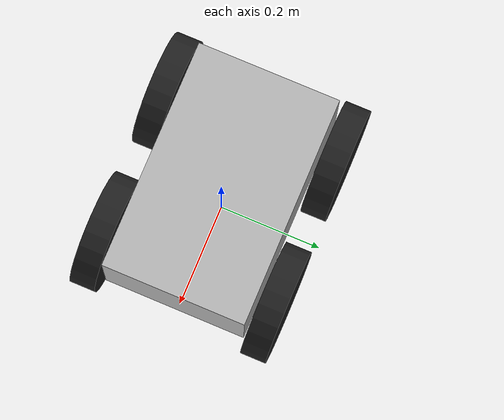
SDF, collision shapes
<?xml version="1.0" ?>
<sdf version="1.4">
  <model name="pioneer2at">
    <static>0</static>
    <link name="chassis">
      <pose>0.0 0.0 0.16 0 0 0</pose>
      <inertial>
        <mass>5.0</mass>
      </inertial>
      <collision name="collision">
        <geometry>
          <box>
            <size>0.445 0.277 0.17</size>
          </box>
        </geometry>
      </collision>
      <visual name="visual">
        <pose>0 0 0.04 0 0 0</pose>
        <geometry>
          <mesh>
            <uri>model://pioneer2dx/meshes/chassis.dae</uri>
          </mesh>
        </geometry>
      </visual>
    </link>
    <link name="front_right_wheel">
      <pose>0.144 -.17 0.11 0 1.5707 1.5707</pose>
      <inertial>
        <mass>0.5</mass>
      </inertial>
      <collision name="collision">
        <geometry>
          <cylinder>
            <radius>0.111</radius>
            <length>0.05</length>
          </cylinder>
        </geometry>
        <surface>
          <friction>
            <ode>
              <slip1>0.0</slip1>
              <slip2>0.0</slip2>
            </ode>
          </friction>
        </surface>
      </collision>
      <visual name="visual">
        <geometry>
          <cylinder>
            <radius>0.111</radius>
            <length>0.05</length>
          </cylinder>
        </geometry>
        <material>
          <script>
            <name>Gazebo/FlatBlack</name>
          </script>
        </material>
      </visual>
    </link>
    <link name="front_left_wheel">
      <pose>0.144 .17 0.11 0 1.5707 1.5707</pose>
      <inertial>
        <mass>0.5</mass>
      </inertial>
      <collision name="collision">
        <geometry>
          <cylinder>
            <radius>0.111</radius>
            <length>0.05</length>
          </cylinder>
        </geometry>
        <surface>
          <friction>
            <ode>
              <slip1>0.0</slip1>
              <slip2>0.0</slip2>
            </ode>
          </friction>
        </surface>
      </collision>
      <visual name="visual">
        <geometry>
          <cylinder>
            <radius>0.111</radius>
            <length>0.05</length>
          </cylinder>
        </geometry>
        <material>
          <script>
            <name>Gazebo/FlatBlack</name>
          </script>
        </material>
      </visual>
    </link>
    <link name="back_right_wheel">
      <pose>-0.144 -.17 0.11 0 1.5707 1.5707</pose>
      <inertial>
        <mass>0.5</mass>
      </inertial>
      <collision name="collision">
        <geometry>
          <cylinder>
            <radius>0.111</radius>
            <length>0.05</length>
          </cylinder>
        </geometry>
        <surface>
          <friction>
            <ode>
              <slip1>0.0</slip1>
              <slip2>0.0</slip2>
            </ode>
          </friction>
        </surface>
      </collision>
      <visual name="visual">
        <geometry>
          <cylinder>
            <radius>0.111</radius>
            <length>0.05</length>
          </cylinder>
        </geometry>
        <material>
          <script>
            <name>Gazebo/FlatBlack</name>
          </script>
        </material>
      </visual>
    </link>
    <link name="back_left_wheel">
      <pose>-0.144 .17 0.11 0 1.5707 1.5707</pose>
      <inertial>
        <mass>0.5</mass>
      </inertial>
      <collision name="collision">
        <geometry>
          <cylinder>
            <radius>0.111</radius>
            <length>0.05</length>
          </cylinder>
        </geometry>
        <surface>
          <friction>
            <ode>
              <slip1>0.0</slip1>
              <slip2>0.0</slip2>
            </ode>
          </friction>
        </surface>
      </collision>
      <visual name="visual">
        <geometry>
          <cylinder>
            <radius>0.111</radius>
            <length>0.05</length>
          </cylinder>
        </geometry>
        <material>
          <script>
            <name>Gazebo/FlatBlack</name>
          </script>
        </material>
      </visual>
    </link>
    <joint type="revolute" name="front_left_wheel_hinge">
      <pose>0 0 -0.03 0 0 0</pose>
      <child>front_left_wheel</child>
      <parent>chassis</parent>
      <axis>
        <xyz>0 1 0</xyz>
      </axis>
    </joint>
    <joint type="revolute" name="front_right_wheel_hinge">
      <pose>0 0 0.03 0 0 0</pose>
      <child>front_right_wheel</child>
      <parent>chassis</parent>
      <axis>
        <xyz>0 1 0</xyz>
      </axis>
    </joint>
    <joint type="revolute" name="back_left_wheel_hinge">
      <pose>0 0 -0.03 0 0 0</pose>
      <child>back_left_wheel</child>
      <parent>chassis</parent>
      <axis>
        <xyz>0 1 0</xyz>
      </axis>
    </joint>
    <joint type="revolute" name="back_right_wheel_hinge">
      <pose>0 0 0.03 0 0 0</pose>
      <child>back_right_wheel</child>
      <parent>chassis</parent>
      <axis>
        <xyz>0 1 0</xyz>
      </axis>
    </joint>
  </model>
</sdf>
